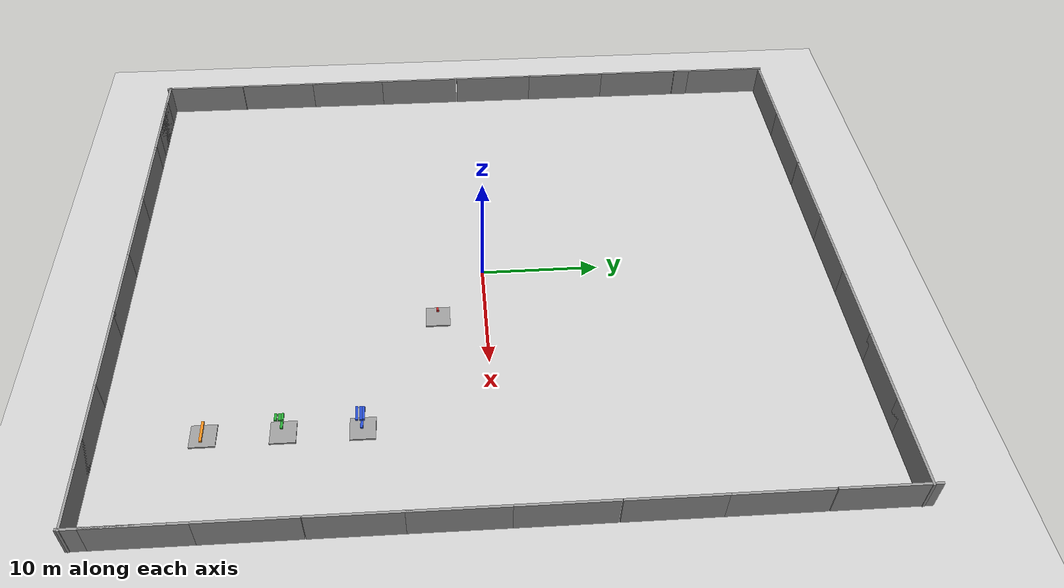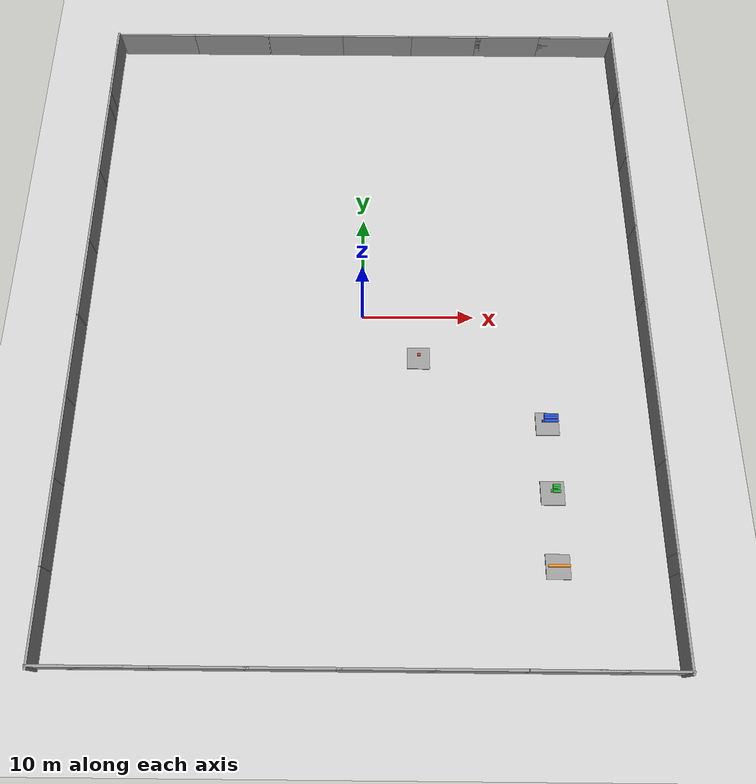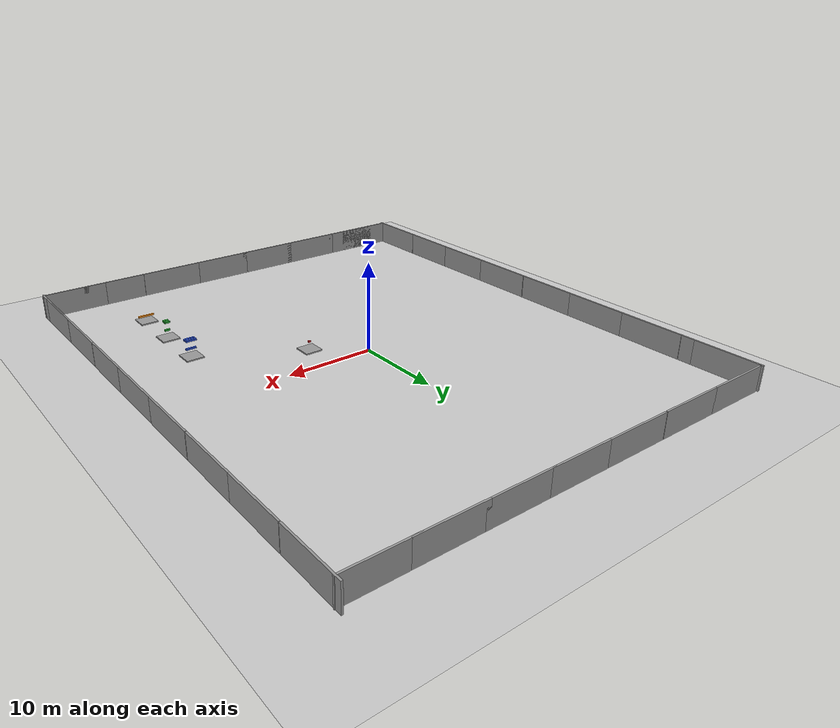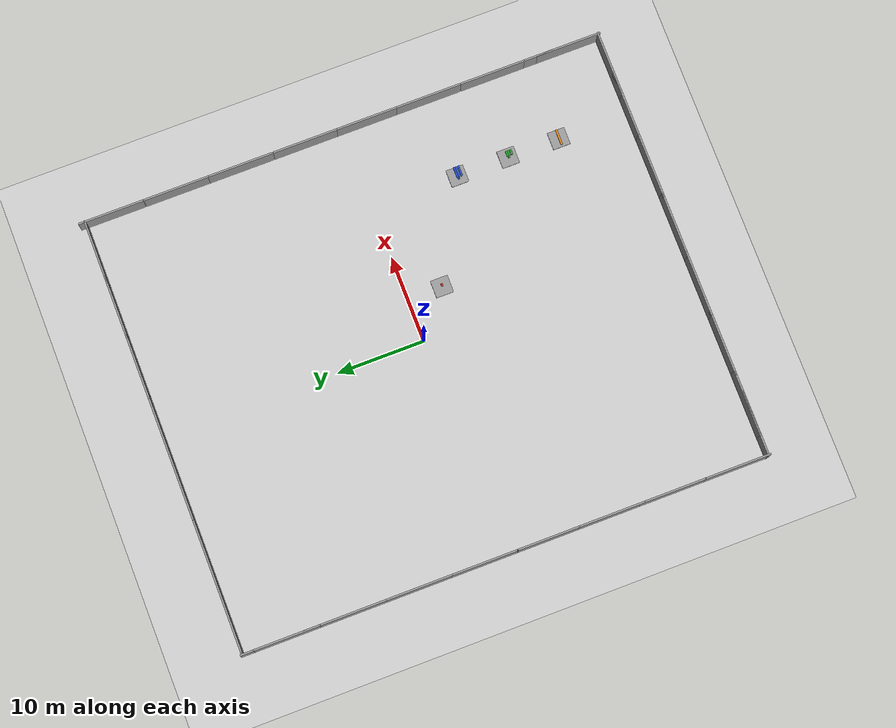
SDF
<sdf version="1.6">
 <world name="default">
  <light name="sun" type="directional">
   <pose>0 0 10 0 -0 0</pose>
   <diffuse>0.8 0.8 0.8 1</diffuse>
   <specular>0.1 0.1 0.1 1</specular>
   <attenuation>
    <range>1000</range>
    <constant>0.9</constant>
    <linear>0.01</linear>
    <quadratic>0.001</quadratic>
   </attenuation>
   <direction>-0.5 0.5 -1</direction>
  </light>
  <model name="ground_plane">
   <static>1</static>
   <link name="link">
    <collision name="collision">
     <geometry><plane><normal>0 0 1</normal><size>100 100</size></plane></geometry>
     <surface><friction><ode><mu>100</mu><mu2>50</mu2></ode></friction></surface>
    </collision>
    <visual name="visual">
     <cast_shadows>0</cast_shadows>
     <geometry><plane><normal>0 0 1</normal><size>100 100</size></plane></geometry>
     <material>
      <script><uri>file://media/materials/scripts/gazebo.material</uri><name>Gazebo/Grey</name></script>
     </material>
    </visual>
   </link>
  </model>
  <gravity>0 0 -9.8</gravity>
  <magnetic_field>6e-06 2.3e-05 -4.2e-05</magnetic_field>
  <atmosphere type="adiabatic"/>
  <physics name="default_physics" default="0" type="ode">
   <max_step_size>0.001</max_step_size>
   <real_time_factor>1</real_time_factor>
   <real_time_update_rate>1000</real_time_update_rate>
  </physics>
  <scene><ambient>0.4 0.4 0.4 1</ambient><background>0.7 0.7 0.7 1</background><shadows>1</shadows></scene>
  <spherical_coordinates>
   <surface_model>EARTH_WGS84</surface_model>
   <latitude_deg>0</latitude_deg>
   <longitude_deg>0</longitude_deg>
   <elevation>0</elevation>
   <heading_deg>0</heading_deg>
  </spherical_coordinates>
  <model name="red_plat">
   <static>1</static>
   <pose>5 -4 0.075 0 -0 0</pose>
   <scale>1 1 1</scale>
   <link name="link">
    <inertial>
     <mass>1</mass>
     <inertia>
      <ixx>0.166667</ixx>
      <ixy>0</ixy>
      <ixz>0</ixz>
      <iyy>0.166667</iyy>
      <iyz>0</iyz>
      <izz>0.166667</izz>
     </inertia>
    </inertial>
    <collision name="collision"><geometry><box><size>2 2 0.15</size></box></geometry></collision>
    <visual name="visual">
     <geometry><box><size>2 2 0.15</size></box></geometry>
     <material>
      <script><name>Gazebo/Grey</name><uri>file://media/materials/scripts/gazebo.material</uri></script>
     </material>
    </visual>
   </link>
  </model>
  <model name="red_box">
   <pose>5 -4 1 0 -0 0</pose>
   <scale>1 1 1</scale>
   <link name="link">
    <inertial>
     <mass>1</mass>
     <inertia>
      <ixx>0.00666667</ixx>
      <ixy>0</ixy>
      <ixz>0</ixz>
      <iyy>0.0108333</iyy>
      <iyz>0</iyz>
      <izz>0.0108333</izz>
     </inertia>
    </inertial>
    <collision name="collision"><geometry><box><size>0.3 0.2 0.2</size></box></geometry></collision>
    <visual name="visual">
     <geometry><box><size>0.3 0.2 0.2</size></box></geometry>
     <material>
      <script><name>Gazebo/Red</name><uri>file://media/materials/scripts/gazebo.material</uri></script>
     </material>
    </visual>
   </link>
  </model>
  <model name="green_plat">
   <pose>16 -16 0.075 0 0 0</pose>
   <scale>1 1 1</scale>
   <link name="link">
    <inertial>
     <mass>1</mass>
     <inertia>
      <ixx>0.166667</ixx>
      <ixy>0</ixy>
      <ixz>0</ixz>
      <iyy>0.166667</iyy>
      <iyz>0</iyz>
      <izz>0.166667</izz>
     </inertia>
    </inertial>
    <collision name="collision"><geometry><box><size>2 2 0.15</size></box></geometry></collision>
    <visual name="visual">
     <geometry><box><size>2 2 0.15</size></box></geometry>
     <material>
      <script><name>Gazebo/Grey</name><uri>file://media/materials/scripts/gazebo.material</uri></script>
     </material>
    </visual>
   </link>
  </model>
  <model name="green_box">
   <pose>16 -16 1 0 0 0</pose>
   <scale>1 1 1</scale>
   <link name="link">
    <inertial>
     <mass>1</mass>
     <inertia>
      <ixx>0.166667</ixx>
      <ixy>0</ixy>
      <ixz>0</ixz>
      <iyy>0.166667</iyy>
      <iyz>0</iyz>
      <izz>0.166667</izz>
     </inertia>
    </inertial>
    <collision name="collision"><geometry><box><size>0.6 0.2 0.2</size></box></geometry></collision>
    <visual name="visual">
     <geometry><box><size>0.6 0.2 0.2</size></box></geometry>
     <material>
      <script><name>Gazebo/Green</name><uri>file://media/materials/scripts/gazebo.material</uri></script>
     </material>
    </visual>
   </link>
  </model>
  <model name="green_box_1">
   <pose>16 -16 2 0 0 0</pose>
   <scale>1 1 1</scale>
   <link name="link">
    <inertial>
     <mass>1</mass>
     <inertia>
      <ixx>0.166667</ixx>
      <ixy>0</ixy>
      <ixz>0</ixz>
      <iyy>0.166667</iyy>
      <iyz>0</iyz>
      <izz>0.166667</izz>
     </inertia>
    </inertial>
    <collision name="collision"><geometry><box><size>0.6 0.2 0.2</size></box></geometry></collision>
    <visual name="visual">
     <geometry><box><size>0.6 0.2 0.2</size></box></geometry>
     <material>
      <script><name>Gazebo/Green</name><uri>file://media/materials/scripts/gazebo.material</uri></script>
     </material>
    </visual>
   </link>
  </model>
  <model name="green_box_2">
   <pose>16 -16 2 0 0 0</pose>
   <scale>1 1 1</scale>
   <link name="link">
    <inertial>
     <mass>1</mass>
     <inertia>
      <ixx>0.166667</ixx>
      <ixy>0</ixy>
      <ixz>0</ixz>
      <iyy>0.166667</iyy>
      <iyz>0</iyz>
      <izz>0.166667</izz>
     </inertia>
    </inertial>
    <collision name="collision"><geometry><box><size>0.6 0.2 0.2</size></box></geometry></collision>
    <visual name="visual">
     <geometry><box><size>0.6 0.2 0.2</size></box></geometry>
     <material>
      <script><name>Gazebo/Green</name><uri>file://media/materials/scripts/gazebo.material</uri></script>
     </material>
    </visual>
   </link>
  </model>
  <model name="green_box_3">
   <pose>16 -16 2 0 0 0</pose>
   <scale>1 1 1</scale>
   <link name="link">
    <inertial>
     <mass>1</mass>
     <inertia>
      <ixx>0.166667</ixx>
      <ixy>0</ixy>
      <ixz>0</ixz>
      <iyy>0.166667</iyy>
      <iyz>0</iyz>
      <izz>0.166667</izz>
     </inertia>
    </inertial>
    <collision name="collision"><geometry><box><size>0.6 0.2 0.2</size></box></geometry></collision>
    <visual name="visual">
     <geometry><box><size>0.6 0.2 0.2</size></box></geometry>
     <material>
      <script><name>Gazebo/Green</name><uri>file://media/materials/scripts/gazebo.material</uri></script>
     </material>
    </visual>
   </link>
  </model>
  <model name="green_box_4">
   <pose>16 -16 2 0 0 0</pose>
   <scale>1 1 1</scale>
   <link name="link">
    <inertial>
     <mass>1</mass>
     <inertia>
      <ixx>0.166667</ixx>
      <ixy>0</ixy>
      <ixz>0</ixz>
      <iyy>0.166667</iyy>
      <iyz>0</iyz>
      <izz>0.166667</izz>
     </inertia>
    </inertial>
    <collision name="collision"><geometry><box><size>0.6 0.2 0.2</size></box></geometry></collision>
    <visual name="visual">
     <geometry><box><size>0.6 0.2 0.2</size></box></geometry>
     <material>
      <script><name>Gazebo/Green</name><uri>file://media/materials/scripts/gazebo.material</uri></script>
     </material>
    </visual>
   </link>
  </model>
  <model name="green_box_5">
   <pose>16 -15.8 2 0 0 0</pose>
   <scale>1 1 1</scale>
   <link name="link">
    <inertial>
     <mass>1</mass>
     <inertia>
      <ixx>0.166667</ixx>
      <ixy>0</ixy>
      <ixz>0</ixz>
      <iyy>0.166667</iyy>
      <iyz>0</iyz>
      <izz>0.166667</izz>
     </inertia>
    </inertial>
    <collision name="collision"><geometry><box><size>0.6 0.2 0.2</size></box></geometry></collision>
    <visual name="visual">
     <geometry><box><size>0.6 0.2 0.2</size></box></geometry>
     <material>
      <script><name>Gazebo/Green</name><uri>file://media/materials/scripts/gazebo.material</uri></script>
     </material>
    </visual>
   </link>
  </model>
  <model name="green_box_6">
   <pose>16 -16.3 2 0 0 0</pose>
   <scale>1 1 1</scale>
   <link name="link">
    <inertial>
     <mass>1</mass>
     <inertia>
      <ixx>0.166667</ixx>
      <ixy>0</ixy>
      <ixz>0</ixz>
      <iyy>0.166667</iyy>
      <iyz>0</iyz>
      <izz>0.166667</izz>
     </inertia>
    </inertial>
    <collision name="collision"><geometry><box><size>0.6 0.2 0.2</size></box></geometry></collision>
    <visual name="visual">
     <geometry><box><size>0.6 0.2 0.2</size></box></geometry>
     <material>
      <script><name>Gazebo/Green</name><uri>file://media/materials/scripts/gazebo.material</uri></script>
     </material>
    </visual>
   </link>
  </model>
  <model name="blue_plat">
   <pose>16 -10 0.075 0 0 0</pose>
   <scale>1 1 1</scale>
   <link name="link">
    <inertial>
     <mass>1</mass>
     <inertia>
      <ixx>0.166667</ixx>
      <ixy>0</ixy>
      <ixz>0</ixz>
      <iyy>0.166667</iyy>
      <iyz>0</iyz>
      <izz>0.166667</izz>
     </inertia>
    </inertial>
    <collision name="collision"><geometry><box><size>2 2 0.15</size></box></geometry></collision>
    <visual name="visual">
     <geometry><box><size>2 2 0.15</size></box></geometry>
     <material>
      <script><name>Gazebo/Grey</name><uri>file://media/materials/scripts/gazebo.material</uri></script>
     </material>
    </visual>
   </link>
  </model>
  <model name="blue_box">
   <pose>16 -10 1 0 0 0</pose>
   <scale>1 1 1</scale>
   <link name="link">
    <inertial>
     <mass>1</mass>
     <inertia>
      <ixx>0.166667</ixx>
      <ixy>0</ixy>
      <ixz>0</ixz>
      <iyy>0.166667</iyy>
      <iyz>0</iyz>
      <izz>0.166667</izz>
     </inertia>
    </inertial>
    <collision name="collision"><geometry><box><size>1.2 0.2 0.2</size></box></geometry></collision>
    <visual name="visual">
     <geometry><box><size>1.2 0.2 0.2</size></box></geometry>
     <material>
      <script><name>Gazebo/Blue</name><uri>file://media/materials/scripts/gazebo.material</uri></script>
     </material>
    </visual>
   </link>
  </model>
  <model name="blue_box_1">
   <pose>16 -10 2 0 0 0</pose>
   <scale>1 1 1</scale>
   <link name="link">
    <inertial>
     <mass>1</mass>
     <inertia>
      <ixx>0.166667</ixx>
      <ixy>0</ixy>
      <ixz>0</ixz>
      <iyy>0.166667</iyy>
      <iyz>0</iyz>
      <izz>0.166667</izz>
     </inertia>
    </inertial>
    <collision name="collision"><geometry><box><size>1.2 0.2 0.2</size></box></geometry></collision>
    <visual name="visual">
     <geometry><box><size>1.2 0.2 0.2</size></box></geometry>
     <material>
      <script><name>Gazebo/Blue</name><uri>file://media/materials/scripts/gazebo.material</uri></script>
     </material>
    </visual>
   </link>
  </model>
  <model name="blue_box_2">
   <pose>16 -10 2 0 0 0</pose>
   <scale>1 1 1</scale>
   <link name="link">
    <inertial>
     <mass>1</mass>
     <inertia>
      <ixx>0.166667</ixx>
      <ixy>0</ixy>
      <ixz>0</ixz>
      <iyy>0.166667</iyy>
      <iyz>0</iyz>
      <izz>0.166667</izz>
     </inertia>
    </inertial>
    <collision name="collision"><geometry><box><size>1.2 0.2 0.2</size></box></geometry></collision>
    <visual name="visual">
     <geometry><box><size>1.2 0.2 0.2</size></box></geometry>
     <material>
      <script><name>Gazebo/Blue</name><uri>file://media/materials/scripts/gazebo.material</uri></script>
     </material>
    </visual>
   </link>
  </model>
  <model name="blue_box_3">
   <pose>16 -10 2 0 0 0</pose>
   <scale>1 1 1</scale>
   <link name="link">
    <inertial>
     <mass>1</mass>
     <inertia>
      <ixx>0.166667</ixx>
      <ixy>0</ixy>
      <ixz>0</ixz>
      <iyy>0.166667</iyy>
      <iyz>0</iyz>
      <izz>0.166667</izz>
     </inertia>
    </inertial>
    <collision name="collision"><geometry><box><size>1.2 0.2 0.2</size></box></geometry></collision>
    <visual name="visual">
     <geometry><box><size>1.2 0.2 0.2</size></box></geometry>
     <material>
      <script><name>Gazebo/Blue</name><uri>file://media/materials/scripts/gazebo.material</uri></script>
     </material>
    </visual>
   </link>
  </model>
  <model name="blue_box_4">
   <pose>16 -10 2 0 0 0</pose>
   <scale>1 1 1</scale>
   <link name="link">
    <inertial>
     <mass>1</mass>
     <inertia>
      <ixx>0.166667</ixx>
      <ixy>0</ixy>
      <ixz>0</ixz>
      <iyy>0.166667</iyy>
      <iyz>0</iyz>
      <izz>0.166667</izz>
     </inertia>
    </inertial>
    <collision name="collision"><geometry><box><size>1.2 0.2 0.2</size></box></geometry></collision>
    <visual name="visual">
     <geometry><box><size>1.2 0.2 0.2</size></box></geometry>
     <material>
      <script><name>Gazebo/Blue</name><uri>file://media/materials/scripts/gazebo.material</uri></script>
     </material>
    </visual>
   </link>
  </model>
  <model name="blue_box_5">
   <pose>16 -9.8 2 0 0 0</pose>
   <scale>1 1 1</scale>
   <link name="link">
    <inertial>
     <mass>1</mass>
     <inertia>
      <ixx>0.166667</ixx>
      <ixy>0</ixy>
      <ixz>0</ixz>
      <iyy>0.166667</iyy>
      <iyz>0</iyz>
      <izz>0.166667</izz>
     </inertia>
    </inertial>
    <collision name="collision"><geometry><box><size>1.2 0.2 0.2</size></box></geometry></collision>
    <visual name="visual">
     <geometry><box><size>1.2 0.2 0.2</size></box></geometry>
     <material>
      <script><name>Gazebo/Blue</name><uri>file://media/materials/scripts/gazebo.material</uri></script>
     </material>
    </visual>
   </link>
  </model>
  <model name="blue_box_6">
   <pose>16 -10.3 2 0 0 0</pose>
   <scale>1 1 1</scale>
   <link name="link">
    <inertial>
     <mass>1</mass>
     <inertia>
      <ixx>0.166667</ixx>
      <ixy>0</ixy>
      <ixz>0</ixz>
      <iyy>0.166667</iyy>
      <iyz>0</iyz>
      <izz>0.166667</izz>
     </inertia>
    </inertial>
    <collision name="collision"><geometry><box><size>1.2 0.2 0.2</size></box></geometry></collision>
    <visual name="visual">
     <geometry><box><size>1.2 0.2 0.2</size></box></geometry>
     <material>
      <script><name>Gazebo/Blue</name><uri>file://media/materials/scripts/gazebo.material</uri></script>
     </material>
    </visual>
   </link>
  </model>
  <model name="orange_plat">
   <pose>16 -22 0.075 0 0 0</pose>
   <scale>1 1 1</scale>
   <link name="link">
    <inertial>
     <mass>1</mass>
     <inertia>
      <ixx>0.166667</ixx>
      <ixy>0</ixy>
      <ixz>0</ixz>
      <iyy>0.166667</iyy>
      <iyz>0</iyz>
      <izz>0.166667</izz>
     </inertia>
    </inertial>
    <collision name="collision"><geometry><box><size>2 2 0.15</size></box></geometry></collision>
    <visual name="visual">
     <geometry><box><size>2 2 0.15</size></box></geometry>
     <material>
      <script><name>Gazebo/Grey</name><uri>file://media/materials/scripts/gazebo.material</uri></script>
     </material>
    </visual>
   </link>
  </model>
  <model name="orange_box">
   <pose>16 -22 0.7 0 0 0</pose>
   <scale>1 1 1</scale>
   <link name="link">
    <inertial>
     <mass>1</mass>
     <inertia>
      <ixx>0.166667</ixx>
      <ixy>0</ixy>
      <ixz>0</ixz>
      <iyy>0.166667</iyy>
      <iyz>0</iyz>
      <izz>0.166667</izz>
     </inertia>
    </inertial>
    <collision name="collision"><geometry><box><size>1.8 0.2 0.2</size></box></geometry></collision>
    <visual name="visual">
     <geometry><box><size>1.8 0.2 0.2</size></box></geometry>
     <material>
      <script><name>Gazebo/Orange</name><uri>file://media/materials/scripts/gazebo.material</uri></script>
     </material>
    </visual>
   </link>
  </model>
  <model name="grey_wall">
   <static>1</static>
   <link name="link">
    <pose>0 0 1.4 0 -0 0</pose>
    <collision name="collision"><geometry><box><size>7.5 0.2 2.8</size></box></geometry></collision>
    <visual name="visual">
     <cast_shadows>0</cast_shadows>
     <geometry><box><size>7.5 0.2 2.8</size></box></geometry>
     <material>
      <script>
       <uri>model://grey_wall/materials/scripts</uri>
       <uri>model://grey_wall/materials/textures</uri>
       <name>vrc/grey_wall</name>
      </script>
     </material>
    </visual>
   </link>
   <pose>2 -30 0 0 -0 0</pose>
  </model>
  <model name="grey_wall_clone">
   <static>1</static>
   <link name="link">
    <pose>0 0 1.4 0 -0 0</pose>
    <collision name="collision"><geometry><box><size>7.5 0.2 2.8</size></box></geometry></collision>
    <visual name="visual">
     <cast_shadows>0</cast_shadows>
     <geometry><box><size>7.5 0.2 2.8</size></box></geometry>
     <material>
      <script>
       <uri>model://grey_wall/materials/scripts</uri>
       <uri>model://grey_wall/materials/textures</uri>
       <name>vrc/grey_wall</name>
      </script>
     </material>
    </visual>
   </link>
   <pose>9 -30 0 0 -0 0</pose>
  </model>
  <model name="grey_wall_clone_0">
   <static>1</static>
   <link name="link">
    <pose>0 0 1.4 0 -0 0</pose>
    <collision name="collision"><geometry><box><size>7.5 0.2 2.8</size></box></geometry></collision>
    <visual name="visual">
     <cast_shadows>0</cast_shadows>
     <geometry><box><size>7.5 0.2 2.8</size></box></geometry>
     <material>
      <script>
       <uri>model://grey_wall/materials/scripts</uri>
       <uri>model://grey_wall/materials/textures</uri>
       <name>vrc/grey_wall</name>
      </script>
     </material>
    </visual>
   </link>
   <pose>16.5185 -30 0 0 -0 0</pose>
  </model>
  <model name="grey_wall_clone_1">
   <static>1</static>
   <link name="link">
    <pose>0 0 1.4 0 -0 0</pose>
    <collision name="collision"><geometry><box><size>7.5 0.2 2.8</size></box></geometry></collision>
    <visual name="visual">
     <cast_shadows>0</cast_shadows>
     <geometry><box><size>7.5 0.2 2.8</size></box></geometry>
     <material>
      <script>
       <uri>model://grey_wall/materials/scripts</uri>
       <uri>model://grey_wall/materials/textures</uri>
       <name>vrc/grey_wall</name>
      </script>
     </material>
    </visual>
   </link>
   <pose>-5 -30 0 0 -0 0</pose>
  </model>
  <model name="grey_wall_clone_2">
   <static>1</static>
   <link name="link">
    <pose>0 0 1.4 0 -0 0</pose>
    <collision name="collision"><geometry><box><size>7.5 0.2 2.8</size></box></geometry></collision>
    <visual name="visual">
     <cast_shadows>0</cast_shadows>
     <geometry><box><size>7.5 0.2 2.8</size></box></geometry>
     <material>
      <script>
       <uri>model://grey_wall/materials/scripts</uri>
       <uri>model://grey_wall/materials/textures</uri>
       <name>vrc/grey_wall</name>
      </script>
     </material>
    </visual>
   </link>
   <pose>-12 -30 0 0 -0 0</pose>
  </model>
  <model name="grey_wall_clone_3">
   <static>1</static>
   <link name="link">
    <pose>0 0 1.4 0 -0 0</pose>
    <collision name="collision"><geometry><box><size>7.5 0.2 2.8</size></box></geometry></collision>
    <visual name="visual">
     <cast_shadows>0</cast_shadows>
     <geometry><box><size>7.5 0.2 2.8</size></box></geometry>
     <material>
      <script>
       <uri>model://grey_wall/materials/scripts</uri>
       <uri>model://grey_wall/materials/textures</uri>
       <name>vrc/grey_wall</name>
      </script>
     </material>
    </visual>
   </link>
   <pose>-19 -30 0 0 -0 0</pose>
  </model>
  <model name="grey_wall_clone_4">
   <static>1</static>
   <link name="link">
    <pose>0 0 1.4 0 -0 0</pose>
    <collision name="collision"><geometry><box><size>7.5 0.2 2.8</size></box></geometry></collision>
    <visual name="visual">
     <cast_shadows>0</cast_shadows>
     <geometry><box><size>7.5 0.2 2.8</size></box></geometry>
     <material>
      <script>
       <uri>model://grey_wall/materials/scripts</uri>
       <uri>model://grey_wall/materials/textures</uri>
       <name>vrc/grey_wall</name>
      </script>
     </material>
    </visual>
   </link>
   <pose>25 -25 0 0 -0 1.5708</pose>
  </model>
  <model name="grey_wall_clone_5">
   <static>1</static>
   <link name="link">
    <pose>0 0 1.4 0 -0 0</pose>
    <collision name="collision"><geometry><box><size>7.5 0.2 2.8</size></box></geometry></collision>
    <visual name="visual">
     <cast_shadows>0</cast_shadows>
     <geometry><box><size>7.5 0.2 2.8</size></box></geometry>
     <material>
      <script>
       <uri>model://grey_wall/materials/scripts</uri>
       <uri>model://grey_wall/materials/textures</uri>
       <name>vrc/grey_wall</name>
      </script>
     </material>
    </visual>
   </link>
   <pose>21.4026 -30 0 0 -0 0</pose>
  </model>
  <model name="grey_wall_clone_4_clone">
   <static>1</static>
   <link name="link">
    <pose>0 0 1.4 0 -0 0</pose>
    <collision name="collision"><geometry><box><size>7.5 0.2 2.8</size></box></geometry></collision>
    <visual name="visual">
     <cast_shadows>0</cast_shadows>
     <geometry><box><size>7.5 0.2 2.8</size></box></geometry>
     <material>
      <script>
       <uri>model://grey_wall/materials/scripts</uri>
       <uri>model://grey_wall/materials/textures</uri>
       <name>vrc/grey_wall</name>
      </script>
     </material>
    </visual>
   </link>
   <pose>25 -26.5201 0 0 -0 1.5708</pose>
  </model>
  <model name="grey_wall_clone_4_clone_0">
   <static>1</static>
   <link name="link">
    <pose>0 0 1.4 0 -0 0</pose>
    <collision name="collision"><geometry><box><size>7.5 0.2 2.8</size></box></geometry></collision>
    <visual name="visual">
     <cast_shadows>0</cast_shadows>
     <geometry><box><size>7.5 0.2 2.8</size></box></geometry>
     <material>
      <script>
       <uri>model://grey_wall/materials/scripts</uri>
       <uri>model://grey_wall/materials/textures</uri>
       <name>vrc/grey_wall</name>
      </script>
     </material>
    </visual>
   </link>
   <pose>-25 -26.5371 0 0 -0 1.5708</pose>
  </model>
  <model name="grey_wall_clone_4_clone_1">
   <static>1</static>
   <link name="link">
    <pose>0 0 1.4 0 -0 0</pose>
    <collision name="collision"><geometry><box><size>7.5 0.2 2.8</size></box></geometry></collision>
    <visual name="visual">
     <cast_shadows>0</cast_shadows>
     <geometry><box><size>7.5 0.2 2.8</size></box></geometry>
     <material>
      <script>
       <uri>model://grey_wall/materials/scripts</uri>
       <uri>model://grey_wall/materials/textures</uri>
       <name>vrc/grey_wall</name>
      </script>
     </material>
    </visual>
   </link>
   <pose>-25 -19 0 0 -0 1.5708</pose>
  </model>
  <model name="grey_wall_clone_4_clone_2">
   <static>1</static>
   <link name="link">
    <pose>0 0 1.4 0 -0 0</pose>
    <collision name="collision"><geometry><box><size>7.5 0.2 2.8</size></box></geometry></collision>
    <visual name="visual">
     <cast_shadows>0</cast_shadows>
     <geometry><box><size>7.5 0.2 2.8</size></box></geometry>
     <material>
      <script>
       <uri>model://grey_wall/materials/scripts</uri>
       <uri>model://grey_wall/materials/textures</uri>
       <name>vrc/grey_wall</name>
      </script>
     </material>
    </visual>
   </link>
   <pose>-25 -12 0 0 -0 1.5708</pose>
  </model>
  <model name="grey_wall_clone_4_clone_3">
   <static>1</static>
   <link name="link">
    <pose>0 0 1.4 0 -0 0</pose>
    <collision name="collision"><geometry><box><size>7.5 0.2 2.8</size></box></geometry></collision>
    <visual name="visual">
     <cast_shadows>0</cast_shadows>
     <geometry><box><size>7.5 0.2 2.8</size></box></geometry>
     <material>
      <script>
       <uri>model://grey_wall/materials/scripts</uri>
       <uri>model://grey_wall/materials/textures</uri>
       <name>vrc/grey_wall</name>
      </script>
     </material>
    </visual>
   </link>
   <pose>-25 -5 0 0 -0 1.5708</pose>
  </model>
  <model name="grey_wall_clone_4_clone_4">
   <static>1</static>
   <link name="link">
    <pose>0 0 1.4 0 -0 0</pose>
    <collision name="collision"><geometry><box><size>7.5 0.2 2.8</size></box></geometry></collision>
    <visual name="visual">
     <cast_shadows>0</cast_shadows>
     <geometry><box><size>7.5 0.2 2.8</size></box></geometry>
     <material>
      <script>
       <uri>model://grey_wall/materials/scripts</uri>
       <uri>model://grey_wall/materials/textures</uri>
       <name>vrc/grey_wall</name>
      </script>
     </material>
    </visual>
   </link>
   <pose>-25 2.5934 0 0 -0 1.5708</pose>
  </model>
  <model name="grey_wall_clone_4_clone_5">
   <static>1</static>
   <link name="link">
    <pose>0 0 1.4 0 -0 0</pose>
    <collision name="collision"><geometry><box><size>7.5 0.2 2.8</size></box></geometry></collision>
    <visual name="visual">
     <cast_shadows>0</cast_shadows>
     <geometry><box><size>7.5 0.2 2.8</size></box></geometry>
     <material>
      <script>
       <uri>model://grey_wall/materials/scripts</uri>
       <uri>model://grey_wall/materials/textures</uri>
       <name>vrc/grey_wall</name>
      </script>
     </material>
    </visual>
   </link>
   <pose>-25 10 0 0 -0 1.5708</pose>
  </model>
  <model name="grey_wall_clone_4_clone_6">
   <static>1</static>
   <link name="link">
    <pose>0 0 1.4 0 -0 0</pose>
    <collision name="collision"><geometry><box><size>7.5 0.2 2.8</size></box></geometry></collision>
    <visual name="visual">
     <cast_shadows>0</cast_shadows>
     <geometry><box><size>7.5 0.2 2.8</size></box></geometry>
     <material>
      <script>
       <uri>model://grey_wall/materials/scripts</uri>
       <uri>model://grey_wall/materials/textures</uri>
       <name>vrc/grey_wall</name>
      </script>
     </material>
    </visual>
   </link>
   <pose>-25 17.4515 0 0 -0 1.5708</pose>
  </model>
  <model name="grey_wall_clone_4_clone_7">
   <static>1</static>
   <link name="link">
    <pose>0 0 1.4 0 -0 0</pose>
    <collision name="collision"><geometry><box><size>7.5 0.2 2.8</size></box></geometry></collision>
    <visual name="visual">
     <cast_shadows>0</cast_shadows>
     <geometry><box><size>7.5 0.2 2.8</size></box></geometry>
     <material>
      <script>
       <uri>model://grey_wall/materials/scripts</uri>
       <uri>model://grey_wall/materials/textures</uri>
       <name>vrc/grey_wall</name>
      </script>
     </material>
    </visual>
   </link>
   <pose>-25 25 0 0 -0 1.5708</pose>
  </model>
  <model name="grey_wall_clone_3_clone">
   <static>1</static>
   <link name="link">
    <pose>0 0 1.4 0 -0 0</pose>
    <collision name="collision"><geometry><box><size>7.5 0.2 2.8</size></box></geometry></collision>
    <visual name="visual">
     <cast_shadows>0</cast_shadows>
     <geometry><box><size>7.5 0.2 2.8</size></box></geometry>
     <material>
      <script>
       <uri>model://grey_wall/materials/scripts</uri>
       <uri>model://grey_wall/materials/textures</uri>
       <name>vrc/grey_wall</name>
      </script>
     </material>
    </visual>
   </link>
   <pose>-21 30 0 0 -0 0</pose>
  </model>
  <model name="grey_wall_clone_3_clone_0">
   <static>1</static>
   <link name="link">
    <pose>0 0 1.4 0 -0 0</pose>
    <collision name="collision"><geometry><box><size>7.5 0.2 2.8</size></box></geometry></collision>
    <visual name="visual">
     <cast_shadows>0</cast_shadows>
     <geometry><box><size>7.5 0.2 2.8</size></box></geometry>
     <material>
      <script>
       <uri>model://grey_wall/materials/scripts</uri>
       <uri>model://grey_wall/materials/textures</uri>
       <name>vrc/grey_wall</name>
      </script>
     </material>
    </visual>
   </link>
   <pose>-13.5767 30 0 0 -0 0</pose>
  </model>
  <model name="grey_wall_clone_3_clone_1">
   <static>1</static>
   <link name="link">
    <pose>0 0 1.4 0 -0 0</pose>
    <collision name="collision"><geometry><box><size>7.5 0.2 2.8</size></box></geometry></collision>
    <visual name="visual">
     <cast_shadows>0</cast_shadows>
     <geometry><box><size>7.5 0.2 2.8</size></box></geometry>
     <material>
      <script>
       <uri>model://grey_wall/materials/scripts</uri>
       <uri>model://grey_wall/materials/textures</uri>
       <name>vrc/grey_wall</name>
      </script>
     </material>
    </visual>
   </link>
   <pose>-6 30 0 0 -0 0</pose>
  </model>
  <model name="grey_wall_clone_3_clone_2">
   <static>1</static>
   <link name="link">
    <pose>0 0 1.4 0 -0 0</pose>
    <collision name="collision"><geometry><box><size>7.5 0.2 2.8</size></box></geometry></collision>
    <visual name="visual">
     <cast_shadows>0</cast_shadows>
     <geometry><box><size>7.5 0.2 2.8</size></box></geometry>
     <material>
      <script>
       <uri>model://grey_wall/materials/scripts</uri>
       <uri>model://grey_wall/materials/textures</uri>
       <name>vrc/grey_wall</name>
      </script>
     </material>
    </visual>
   </link>
   <pose>1 30 0 0 -0 0</pose>
  </model>
  <model name="grey_wall_clone_3_clone_3">
   <static>1</static>
   <link name="link">
    <pose>0 0 1.4 0 -0 0</pose>
    <collision name="collision"><geometry><box><size>7.5 0.2 2.8</size></box></geometry></collision>
    <visual name="visual">
     <cast_shadows>0</cast_shadows>
     <geometry><box><size>7.5 0.2 2.8</size></box></geometry>
     <material>
      <script>
       <uri>model://grey_wall/materials/scripts</uri>
       <uri>model://grey_wall/materials/textures</uri>
       <name>vrc/grey_wall</name>
      </script>
     </material>
    </visual>
   </link>
   <pose>8 30 0 0 -0 0</pose>
  </model>
  <model name="grey_wall_clone_3_clone_4">
   <static>1</static>
   <link name="link">
    <pose>0 0 1.4 0 -0 0</pose>
    <collision name="collision"><geometry><box><size>7.5 0.2 2.8</size></box></geometry></collision>
    <visual name="visual">
     <cast_shadows>0</cast_shadows>
     <geometry><box><size>7.5 0.2 2.8</size></box></geometry>
     <material>
      <script>
       <uri>model://grey_wall/materials/scripts</uri>
       <uri>model://grey_wall/materials/textures</uri>
       <name>vrc/grey_wall</name>
      </script>
     </material>
    </visual>
   </link>
   <pose>15 30 0 0 -0 0</pose>
  </model>
  <model name="grey_wall_clone_3_clone_5">
   <static>1</static>
   <link name="link">
    <pose>0 0 1.4 0 -0 0</pose>
    <collision name="collision"><geometry><box><size>7.5 0.2 2.8</size></box></geometry></collision>
    <visual name="visual">
     <cast_shadows>0</cast_shadows>
     <geometry><box><size>7.5 0.2 2.8</size></box></geometry>
     <material>
      <script>
       <uri>model://grey_wall/materials/scripts</uri>
       <uri>model://grey_wall/materials/textures</uri>
       <name>vrc/grey_wall</name>
      </script>
     </material>
    </visual>
   </link>
   <pose>21.4022 30 0 0 -0 0</pose>
  </model>
  <model name="grey_wall_clone_3_clone_6">
   <static>1</static>
   <link name="link">
    <pose>0 0 1.4 0 -0 0</pose>
    <collision name="collision"><geometry><box><size>7.5 0.2 2.8</size></box></geometry></collision>
    <visual name="visual">
     <cast_shadows>0</cast_shadows>
     <geometry><box><size>7.5 0.2 2.8</size></box></geometry>
     <material>
      <script>
       <uri>model://grey_wall/materials/scripts</uri>
       <uri>model://grey_wall/materials/textures</uri>
       <name>vrc/grey_wall</name>
      </script>
     </material>
    </visual>
   </link>
   <pose>-21.4034 -30 0 0 -0 0</pose>
  </model>
  <model name="grey_wall_clone_4_clone_clone">
   <static>1</static>
   <link name="link">
    <pose>0 0 1.4 0 -0 0</pose>
    <collision name="collision"><geometry><box><size>7.5 0.2 2.8</size></box></geometry></collision>
    <visual name="visual">
     <cast_shadows>0</cast_shadows>
     <geometry><box><size>7.5 0.2 2.8</size></box></geometry>
     <material>
      <script>
       <uri>model://grey_wall/materials/scripts</uri>
       <uri>model://grey_wall/materials/textures</uri>
       <name>vrc/grey_wall</name>
      </script>
     </material>
    </visual>
   </link>
   <pose>25 -17.5464 0 0 -0 1.5708</pose>
  </model>
  <model name="grey_wall_clone_4_clone_clone_0">
   <static>1</static>
   <link name="link">
    <pose>0 0 1.4 0 -0 0</pose>
    <collision name="collision"><geometry><box><size>7.5 0.2 2.8</size></box></geometry></collision>
    <visual name="visual">
     <cast_shadows>0</cast_shadows>
     <geometry><box><size>7.5 0.2 2.8</size></box></geometry>
     <material>
      <script>
       <uri>model://grey_wall/materials/scripts</uri>
       <uri>model://grey_wall/materials/textures</uri>
       <name>vrc/grey_wall</name>
      </script>
     </material>
    </visual>
   </link>
   <pose>25 -10 0 0 -0 1.5708</pose>
  </model>
  <model name="grey_wall_clone_4_clone_clone_1">
   <static>1</static>
   <link name="link">
    <pose>0 0 1.4 0 -0 0</pose>
    <collision name="collision"><geometry><box><size>7.5 0.2 2.8</size></box></geometry></collision>
    <visual name="visual">
     <cast_shadows>0</cast_shadows>
     <geometry><box><size>7.5 0.2 2.8</size></box></geometry>
     <material>
      <script>
       <uri>model://grey_wall/materials/scripts</uri>
       <uri>model://grey_wall/materials/textures</uri>
       <name>vrc/grey_wall</name>
      </script>
     </material>
    </visual>
   </link>
   <pose>25 -3 0 0 -0 1.5708</pose>
  </model>
  <model name="grey_wall_clone_4_clone_clone_2">
   <static>1</static>
   <link name="link">
    <pose>0 0 1.4 0 -0 0</pose>
    <collision name="collision"><geometry><box><size>7.5 0.2 2.8</size></box></geometry></collision>
    <visual name="visual">
     <cast_shadows>0</cast_shadows>
     <geometry><box><size>7.5 0.2 2.8</size></box></geometry>
     <material>
      <script>
       <uri>model://grey_wall/materials/scripts</uri>
       <uri>model://grey_wall/materials/textures</uri>
       <name>vrc/grey_wall</name>
      </script>
     </material>
    </visual>
   </link>
   <pose>25 4.41053 0 0 -0 1.5708</pose>
  </model>
  <model name="grey_wall_clone_4_clone_clone_3">
   <static>1</static>
   <link name="link">
    <pose>0 0 1.4 0 -0 0</pose>
    <collision name="collision"><geometry><box><size>7.5 0.2 2.8</size></box></geometry></collision>
    <visual name="visual">
     <cast_shadows>0</cast_shadows>
     <geometry><box><size>7.5 0.2 2.8</size></box></geometry>
     <material>
      <script>
       <uri>model://grey_wall/materials/scripts</uri>
       <uri>model://grey_wall/materials/textures</uri>
       <name>vrc/grey_wall</name>
      </script>
     </material>
    </visual>
   </link>
   <pose>25 12 0 0 -0 1.5708</pose>
  </model>
  <model name="grey_wall_clone_4_clone_clone_4">
   <static>1</static>
   <link name="link">
    <pose>0 0 1.4 0 -0 0</pose>
    <collision name="collision"><geometry><box><size>7.5 0.2 2.8</size></box></geometry></collision>
    <visual name="visual">
     <cast_shadows>0</cast_shadows>
     <geometry><box><size>7.5 0.2 2.8</size></box></geometry>
     <material>
      <script>
       <uri>model://grey_wall/materials/scripts</uri>
       <uri>model://grey_wall/materials/textures</uri>
       <name>vrc/grey_wall</name>
      </script>
     </material>
    </visual>
   </link>
   <pose>25 19.4356 0 0 -0 1.5708</pose>
  </model>
  <model name="grey_wall_clone_4_clone_clone_5">
   <static>1</static>
   <link name="link">
    <pose>0 0 1.4 0 -0 0</pose>
    <collision name="collision"><geometry><box><size>7.5 0.2 2.8</size></box></geometry></collision>
    <visual name="visual">
     <cast_shadows>0</cast_shadows>
     <geometry><box><size>7.5 0.2 2.8</size></box></geometry>
     <material>
      <script>
       <uri>model://grey_wall/materials/scripts</uri>
       <uri>model://grey_wall/materials/textures</uri>
       <name>vrc/grey_wall</name>
      </script>
     </material>
    </visual>
   </link>
   <pose>25 27 0 0 -0 1.5708</pose>
  </model>
  <model name="grey_wall_clone_4_clone_7_clone">
   <static>1</static>
   <link name="link">
    <pose>0 0 1.4 0 -0 0</pose>
    <collision name="collision"><geometry><box><size>7.5 0.2 2.8</size></box></geometry></collision>
    <visual name="visual">
     <cast_shadows>0</cast_shadows>
     <geometry><box><size>7.5 0.2 2.8</size></box></geometry>
     <material>
      <script>
       <uri>model://grey_wall/materials/scripts</uri>
       <uri>model://grey_wall/materials/textures</uri>
       <name>vrc/grey_wall</name>
      </script>
     </material>
    </visual>
   </link>
   <pose>-25 26.4859 0 0 -0 1.5708</pose>
  </model>
 </world>
</sdf>
